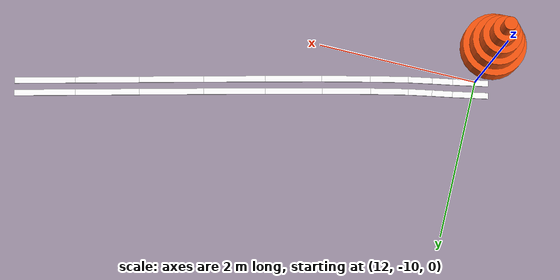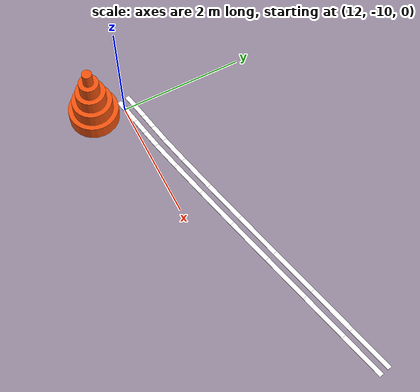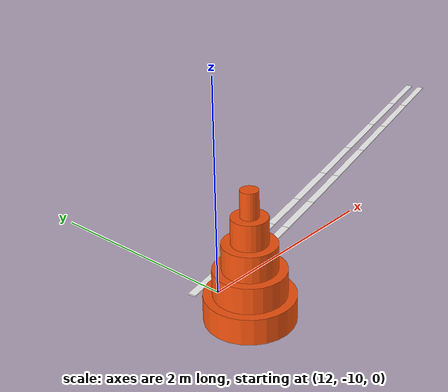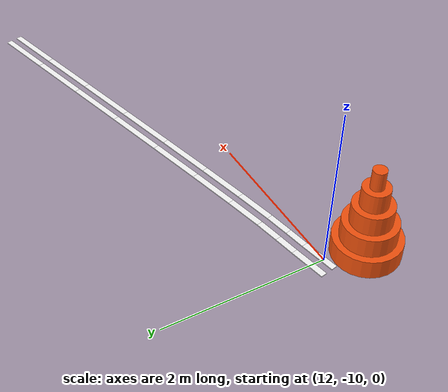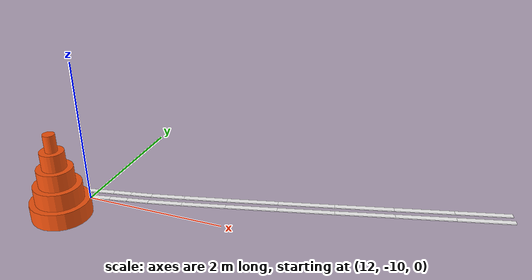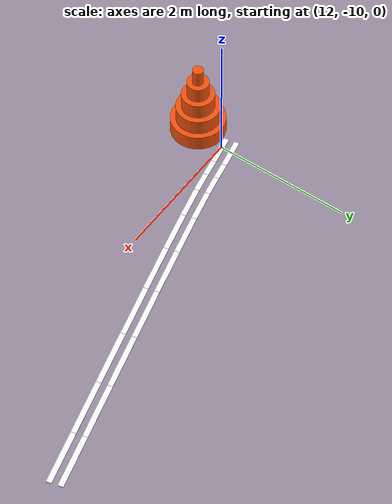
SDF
<sdf version="1.9">
 <world name="igvc_competition">
  <model name="Line_002_0310">
   <static>1</static>
   <pose>12.0256 -9.8232 0.011 0 0 0.199592</pose>
   <link name="link">
    <visual name="visual">
     <geometry><box><size>0.4464 0.0762 0.012</size></box></geometry>
     <material>
      <ambient>0.98 0.98 0.98 1</ambient>
      <diffuse>0.98 0.98 0.98 1</diffuse>
      <specular>0.05 0.05 0.05 1</specular>
      <emissive>0.9 0.9 0.9 1</emissive>
     </material>
    </visual>
   </link>
  </model>
  <model name="Line_002_0311">
   <static>1</static>
   <pose>12.0565 -9.9781 0.011 0 0 0.199553</pose>
   <link name="link">
    <visual name="visual">
     <geometry><box><size>0.4454 0.0762 0.012</size></box></geometry>
     <material>
      <ambient>0.98 0.98 0.98 1</ambient>
      <diffuse>0.98 0.98 0.98 1</diffuse>
      <specular>0.05 0.05 0.05 1</specular>
      <emissive>0.9 0.9 0.9 1</emissive>
     </material>
    </visual>
   </link>
  </model>
  <model name="Line_002_0312">
   <static>1</static>
   <pose>12.3706 -9.7553 0.011 0 0 0.185181</pose>
   <link name="link">
    <visual name="visual">
     <geometry><box><size>0.2569 0.0762 0.012</size></box></geometry>
     <material>
      <ambient>0.98 0.98 0.98 1</ambient>
      <diffuse>0.98 0.98 0.98 1</diffuse>
      <specular>0.05 0.05 0.05 1</specular>
      <emissive>0.9 0.9 0.9 1</emissive>
     </material>
    </visual>
   </link>
  </model>
  <model name="Line_002_0313">
   <static>1</static>
   <pose>12.4008 -9.9105 0.011 0 0 0.184845</pose>
   <link name="link">
    <visual name="visual">
     <geometry><box><size>0.2563 0.0762 0.012</size></box></geometry>
     <material>
      <ambient>0.98 0.98 0.98 1</ambient>
      <diffuse>0.98 0.98 0.98 1</diffuse>
      <specular>0.05 0.05 0.05 1</specular>
      <emissive>0.9 0.9 0.9 1</emissive>
     </material>
    </visual>
   </link>
  </model>
  <model name="Line_002_0314">
   <static>1</static>
   <pose>12.6438 -9.7030 0.011 0 0 0.192813</pose>
   <link name="link">
    <visual name="visual">
     <geometry><box><size>0.2996 0.0762 0.012</size></box></geometry>
     <material>
      <ambient>0.98 0.98 0.98 1</ambient>
      <diffuse>0.98 0.98 0.98 1</diffuse>
      <specular>0.05 0.05 0.05 1</specular>
      <emissive>0.9 0.9 0.9 1</emissive>
     </material>
    </visual>
   </link>
  </model>
  <model name="Line_002_0315">
   <static>1</static>
   <pose>12.6754 -9.8578 0.011 0 0 0.192930</pose>
   <link name="link">
    <visual name="visual">
     <geometry><box><size>0.3030 0.0762 0.012</size></box></geometry>
     <material>
      <ambient>0.98 0.98 0.98 1</ambient>
      <diffuse>0.98 0.98 0.98 1</diffuse>
      <specular>0.05 0.05 0.05 1</specular>
      <emissive>0.9 0.9 0.9 1</emissive>
     </material>
    </visual>
   </link>
  </model>
  <model name="Line_002_0316">
   <static>1</static>
   <pose>13.0202 -9.6215 0.011 0 0 0.226066</pose>
   <link name="link">
    <visual name="visual">
     <geometry><box><size>0.4707 0.0762 0.012</size></box></geometry>
     <material>
      <ambient>0.98 0.98 0.98 1</ambient>
      <diffuse>0.98 0.98 0.98 1</diffuse>
      <specular>0.05 0.05 0.05 1</specular>
      <emissive>0.9 0.9 0.9 1</emissive>
     </material>
    </visual>
   </link>
  </model>
  <model name="Line_002_0317">
   <static>1</static>
   <pose>13.0554 -9.7756 0.011 0 0 0.226072</pose>
   <link name="link">
    <visual name="visual">
     <geometry><box><size>0.4747 0.0762 0.012</size></box></geometry>
     <material>
      <ambient>0.98 0.98 0.98 1</ambient>
      <diffuse>0.98 0.98 0.98 1</diffuse>
      <specular>0.05 0.05 0.05 1</specular>
      <emissive>0.9 0.9 0.9 1</emissive>
     </material>
    </visual>
   </link>
  </model>
  <model name="Line_002_0318">
   <static>1</static>
   <pose>13.5450 -9.4967 0.011 0 0 0.239197</pose>
   <link name="link">
    <visual name="visual">
     <geometry><box><size>0.6082 0.0762 0.012</size></box></geometry>
     <material>
      <ambient>0.98 0.98 0.98 1</ambient>
      <diffuse>0.98 0.98 0.98 1</diffuse>
      <specular>0.05 0.05 0.05 1</specular>
      <emissive>0.9 0.9 0.9 1</emissive>
     </material>
    </visual>
   </link>
  </model>
  <model name="Line_002_0319">
   <static>1</static>
   <pose>13.5830 -9.6502 0.011 0 0 0.239212</pose>
   <link name="link">
    <visual name="visual">
     <geometry><box><size>0.6099 0.0762 0.012</size></box></geometry>
     <material>
      <ambient>0.98 0.98 0.98 1</ambient>
      <diffuse>0.98 0.98 0.98 1</diffuse>
      <specular>0.05 0.05 0.05 1</specular>
      <emissive>0.9 0.9 0.9 1</emissive>
     </material>
    </visual>
   </link>
  </model>
  <model name="Line_002_0320">
   <static>1</static>
   <pose>14.1847 -9.3382 0.011 0 0 0.246038</pose>
   <link name="link">
    <visual name="visual">
     <geometry><box><size>0.7099 0.0762 0.012</size></box></geometry>
     <material>
      <ambient>0.98 0.98 0.98 1</ambient>
      <diffuse>0.98 0.98 0.98 1</diffuse>
      <specular>0.05 0.05 0.05 1</specular>
      <emissive>0.9 0.9 0.9 1</emissive>
     </material>
    </visual>
   </link>
  </model>
  <model name="Line_002_0321">
   <static>1</static>
   <pose>14.2239 -9.4914 0.011 0 0 0.246037</pose>
   <link name="link">
    <visual name="visual">
     <geometry><box><size>0.7107 0.0762 0.012</size></box></geometry>
     <material>
      <ambient>0.98 0.98 0.98 1</ambient>
      <diffuse>0.98 0.98 0.98 1</diffuse>
      <specular>0.05 0.05 0.05 1</specular>
      <emissive>0.9 0.9 0.9 1</emissive>
     </material>
    </visual>
   </link>
  </model>
  <model name="Line_002_0322">
   <static>1</static>
   <pose>14.9049 -9.1559 0.011 0 0 0.249729</pose>
   <link name="link">
    <visual name="visual">
     <geometry><box><size>0.7761 0.0762 0.012</size></box></geometry>
     <material>
      <ambient>0.98 0.98 0.98 1</ambient>
      <diffuse>0.98 0.98 0.98 1</diffuse>
      <specular>0.05 0.05 0.05 1</specular>
      <emissive>0.9 0.9 0.9 1</emissive>
     </material>
    </visual>
   </link>
  </model>
  <model name="Line_002_0323">
   <static>1</static>
   <pose>14.9447 -9.3088 0.011 0 0 0.249695</pose>
   <link name="link">
    <visual name="visual">
     <geometry><box><size>0.7766 0.0762 0.012</size></box></geometry>
     <material>
      <ambient>0.98 0.98 0.98 1</ambient>
      <diffuse>0.98 0.98 0.98 1</diffuse>
      <specular>0.05 0.05 0.05 1</specular>
      <emissive>0.9 0.9 0.9 1</emissive>
     </material>
    </visual>
   </link>
  </model>
  <model name="Line_002_0324">
   <static>1</static>
   <pose>15.6717 -8.9596 0.011 0 0 0.251591</pose>
   <link name="link">
    <visual name="visual">
     <geometry><box><size>0.8070 0.0762 0.012</size></box></geometry>
     <material>
      <ambient>0.98 0.98 0.98 1</ambient>
      <diffuse>0.98 0.98 0.98 1</diffuse>
      <specular>0.05 0.05 0.05 1</specular>
      <emissive>0.9 0.9 0.9 1</emissive>
     </material>
    </visual>
   </link>
  </model>
  <model name="Line_002_0325">
   <static>1</static>
   <pose>15.7119 -9.1124 0.011 0 0 0.251529</pose>
   <link name="link">
    <visual name="visual">
     <geometry><box><size>0.8072 0.0762 0.012</size></box></geometry>
     <material>
      <ambient>0.98 0.98 0.98 1</ambient>
      <diffuse>0.98 0.98 0.98 1</diffuse>
      <specular>0.05 0.05 0.05 1</specular>
      <emissive>0.9 0.9 0.9 1</emissive>
     </material>
    </visual>
   </link>
  </model>
  <model name="Line_002_0326">
   <static>1</static>
   <pose>16.4511 -8.7589 0.011 0 0 0.252200</pose>
   <link name="link">
    <visual name="visual">
     <geometry><box><size>0.8027 0.0762 0.012</size></box></geometry>
     <material>
      <ambient>0.98 0.98 0.98 1</ambient>
      <diffuse>0.98 0.98 0.98 1</diffuse>
      <specular>0.05 0.05 0.05 1</specular>
      <emissive>0.9 0.9 0.9 1</emissive>
     </material>
    </visual>
   </link>
  </model>
  <model name="Line_002_0327">
   <static>1</static>
   <pose>16.4915 -8.9119 0.011 0 0 0.252200</pose>
   <link name="link">
    <visual name="visual">
     <geometry><box><size>0.8027 0.0762 0.012</size></box></geometry>
     <material>
      <ambient>0.98 0.98 0.98 1</ambient>
      <diffuse>0.98 0.98 0.98 1</diffuse>
      <specular>0.05 0.05 0.05 1</specular>
      <emissive>0.9 0.9 0.9 1</emissive>
     </material>
    </visual>
   </link>
  </model>
  <model name="Line_002_0328">
   <static>1</static>
   <pose>17.2094 -8.5639 0.011 0 0 0.251367</pose>
   <link name="link">
    <visual name="visual">
     <geometry><box><size>0.7631 0.0762 0.012</size></box></geometry>
     <material>
      <ambient>0.98 0.98 0.98 1</ambient>
      <diffuse>0.98 0.98 0.98 1</diffuse>
      <specular>0.05 0.05 0.05 1</specular>
      <emissive>0.9 0.9 0.9 1</emissive>
     </material>
    </visual>
   </link>
  </model>
  <model name="Line_002_0329">
   <static>1</static>
   <pose>17.2495 -8.7168 0.011 0 0 0.251432</pose>
   <link name="link">
    <visual name="visual">
     <geometry><box><size>0.7629 0.0762 0.012</size></box></geometry>
     <material>
      <ambient>0.98 0.98 0.98 1</ambient>
      <diffuse>0.98 0.98 0.98 1</diffuse>
      <specular>0.05 0.05 0.05 1</specular>
      <emissive>0.9 0.9 0.9 1</emissive>
     </material>
    </visual>
   </link>
  </model>
  <model name="Cones_030">
   <static>1</static>
   <pose>11.8921 -10.4716 0 0 0 0</pose>
   <link name="link">
    <collision name="collision">
     <pose>0 0 0.5985 0 0 0</pose>
     <geometry><cylinder><radius>0.3974</radius><length>1.1969</length></cylinder></geometry>
    </collision>
    <visual name="visual_0">
     <pose>0 0 0.1197 0 0 0</pose>
     <geometry><cylinder><radius>0.3974</radius><length>0.2394</length></cylinder></geometry>
     <material>
      <ambient>0.95 0.32 0.05 1.0</ambient>
      <diffuse>0.95 0.32 0.05 1.0</diffuse>
      <specular>0.05 0.05 0.05 1</specular>
     </material>
    </visual>
    <visual name="visual_1">
     <pose>0 0 0.3591 0 0 0</pose>
     <geometry><cylinder><radius>0.3179</radius><length>0.2394</length></cylinder></geometry>
     <material>
      <ambient>0.95 0.32 0.05 1.0</ambient>
      <diffuse>0.95 0.32 0.05 1.0</diffuse>
      <specular>0.05 0.05 0.05 1</specular>
     </material>
    </visual>
    <visual name="visual_2">
     <pose>0 0 0.5985 0 0 0</pose>
     <geometry><cylinder><radius>0.2384</radius><length>0.2394</length></cylinder></geometry>
     <material>
      <ambient>0.95 0.32 0.05 1.0</ambient>
      <diffuse>0.95 0.32 0.05 1.0</diffuse>
      <specular>0.05 0.05 0.05 1</specular>
     </material>
    </visual>
    <visual name="visual_3">
     <pose>0 0 0.8378 0 0 0</pose>
     <geometry><cylinder><radius>0.1590</radius><length>0.2394</length></cylinder></geometry>
     <material>
      <ambient>0.95 0.32 0.05 1.0</ambient>
      <diffuse>0.95 0.32 0.05 1.0</diffuse>
      <specular>0.05 0.05 0.05 1</specular>
     </material>
    </visual>
    <visual name="visual_4">
     <pose>0 0 1.0772 0 0 0</pose>
     <geometry><cylinder><radius>0.0795</radius><length>0.2394</length></cylinder></geometry>
     <material>
      <ambient>0.95 0.32 0.05 1.0</ambient>
      <diffuse>0.95 0.32 0.05 1.0</diffuse>
      <specular>0.05 0.05 0.05 1</specular>
     </material>
    </visual>
   </link>
  </model>
 </world>
</sdf>
